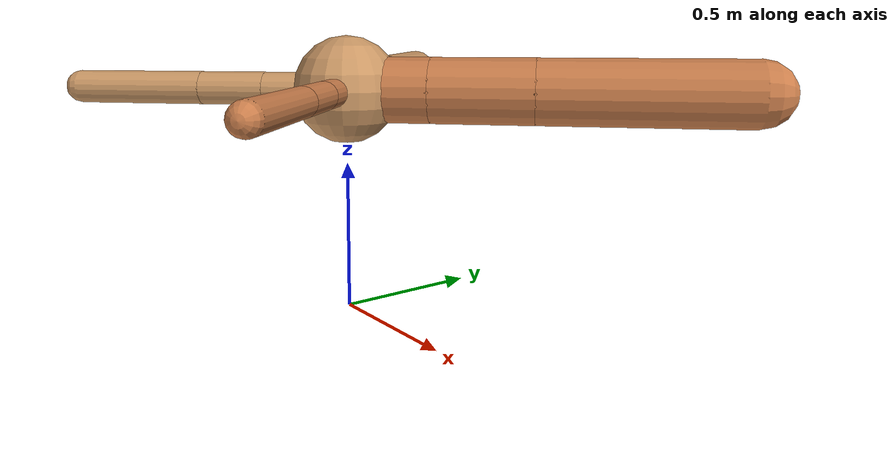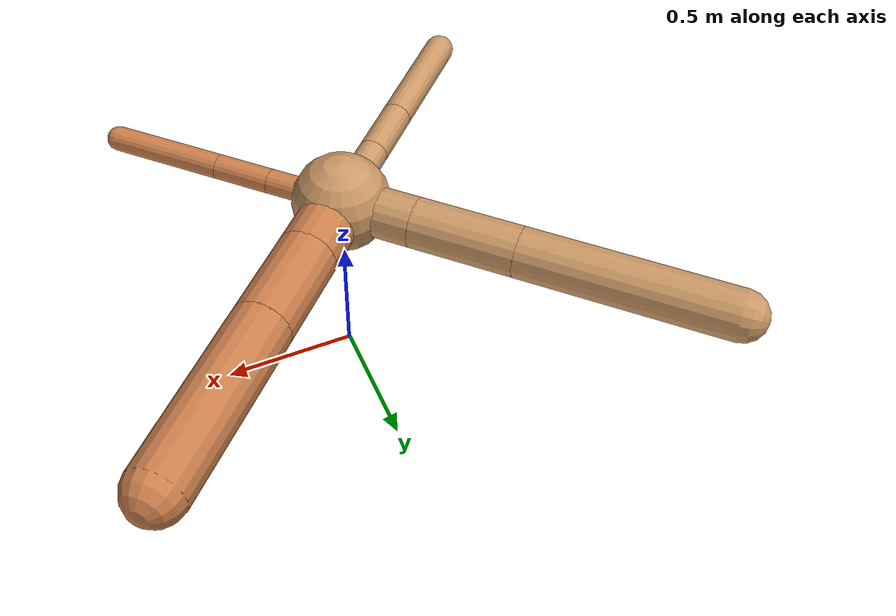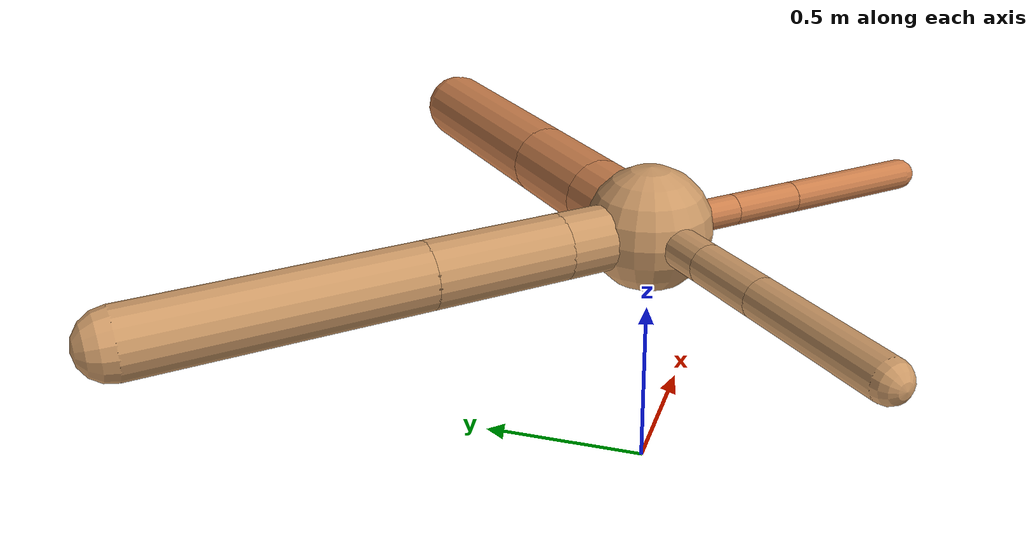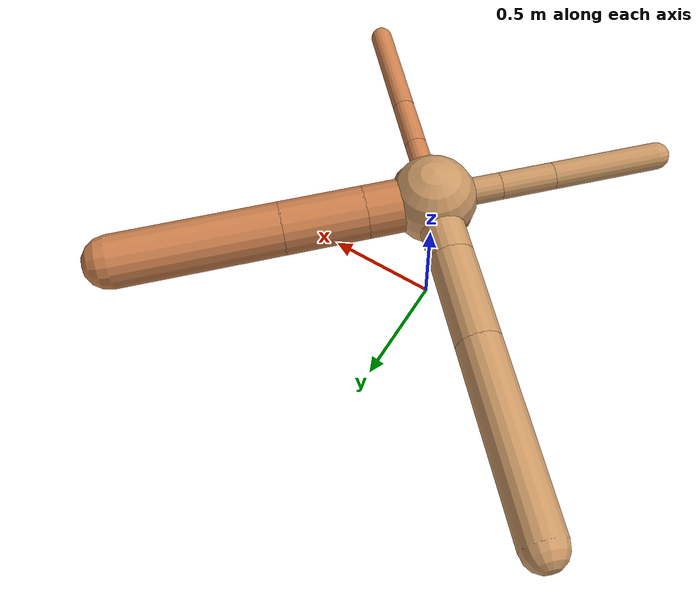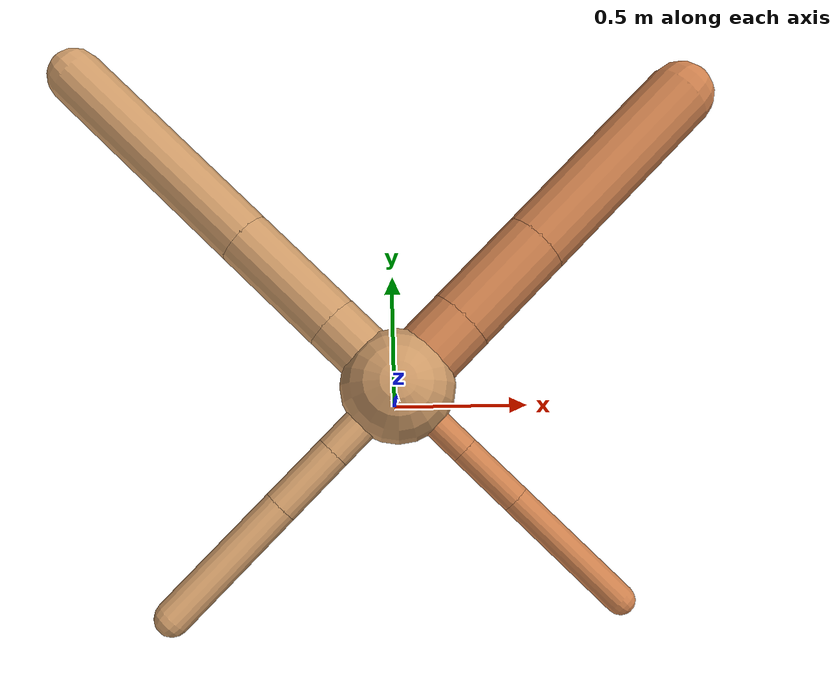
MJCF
<?xml version="1.0" ?>
<mujoco model="ant">

	<compiler angle="degree" coordinate="local" inertiafromgeom="true"/>

	<option integrator="RK4" timestep="0.01"/>

	<custom>

		<numeric data="0.0 0.0 0.55 1.0 0.0 0.0 0.0 0.0 1.0 0.0 -1.0 0.0 -1.0 0.0 1.0" name="init_qpos"/>

	</custom>

	<default>

		<joint armature="1" damping="1" limited="true"/>

		<geom conaffinity="0" condim="3" density="5.0" friction="1.5 0.1 0.1" margin="0.01" rgba="0.8 0.6 0.4 1"/>

	</default>

	<worldbody>

		<body name="torso" pos="0 0 0.75">

			<geom name="torso_geom" pos="0 0 0" size="0.17936627186171056" type="sphere"/>

			<!--joint armature="0" damping="0" limited="false" margin="0.01" name="root" pos="0 0 0" type="free"/-->

			<body name="front_left_leg" pos="0 0 0">

				<geom fromto="0 0 0 0.2 0.2 0" name="aux_1_geom" size="0.10976393002563818" type="capsule" rgba=".8 .5 .3 1"/>

				<body name="aux_1" pos="0.2 0.2 0">

					<joint axis="0 0 1" name="hip_1" pos="0.0 0.0 0.0" range="-40 40" type="hinge"/>

					<geom fromto="0 0 0 0.24053408357193248 0.24053408357193248 0" name="left_leg_geom" size="0.10976393002563818" type="capsule" rgba=".8 .5 .3 1"/>

					<body pos="0.24053408357193248 0.24053408357193248 0" name="front_left_foot">

						<joint axis="-1 1 0" name="ankle_1" pos="0.0 0.0 0.0" range="30 100" type="hinge"/>

						<geom fromto="0 0 0 0.48106816714386497 0.48106816714386497 0" name="left_ankle_geom" size="0.10976393002563818" type="capsule" rgba=".8 .5 .3 1"/>

					</body>

				</body>

			</body>

			<body name="front_right_leg" pos="0 0 0">

				<geom fromto="0 0 0 -0.2 0.2 0" name="aux_2_geom" size="0.09189312797627032" type="capsule"/>

				<body name="aux_2" pos="-0.2 0.2 0">

					<joint axis="0 0 1" name="hip_2" pos="0.0 0.0 0.0" range="-40 40" type="hinge"/>

					<geom fromto="0 0 0 -0.2723200280399839 0.2723200280399839 0" name="right_leg_geom" size="0.09189312797627032" type="capsule"/>

					<body pos="-0.2723200280399839 0.2723200280399839 0" name="front_right_foot">

						<joint axis="1 1 0" name="ankle_2" pos="0.0 0.0 0.0" range="-100 -30" type="hinge"/>

						<geom fromto="0 0 0 -0.5446400560799678 0.5446400560799678 0" name="right_ankle_geom" size="0.09189312797627032" type="capsule"/>

					</body>

				</body>

			</body>

			<body name="left_back_leg" pos="0 0 0">

				<geom fromto="0 0 0 -0.2 -0.2 0" name="aux_3_geom" size="0.05644753465351524" type="capsule"/>

				<body name="aux_3" pos="-0.2 -0.2 0">

					<joint axis="0 0 1" name="hip_3" pos="0.0 0.0 0.0" range="-40 40" type="hinge"/>

					<geom fromto="0 0 0 -0.15945318827963428 -0.15945318827963428 0" name="back_leg_geom" size="0.05644753465351524" type="capsule"/>

					<body pos="-0.15945318827963428 -0.15945318827963428 0" name="left_back_foot">

						<joint axis="-1 1 0" name="ankle_3" pos="0.0 0.0 0.0" range="-100 -30" type="hinge"/>

						<geom fromto="0 0 0 -0.31890637655926857 -0.31890637655926857 0" name="third_ankle_geom" size="0.05644753465351524" type="capsule"/>

					</body>

				</body>

			</body>

			<body name="right_back_leg" pos="0 0 0">

				<geom fromto="0 0 0 0.2 -0.2 0" name="aux_4_geom" size="0.045657211031462204" type="capsule" rgba=".8 .5 .3 1"/>

				<body name="aux_4" pos="0.2 -0.2 0">

					<joint axis="0 0 1" name="hip_4" pos="0.0 0.0 0.0" range="-40 40" type="hinge"/>

					<geom fromto="0 0 0 0.14895315292511 -0.14895315292511 0" name="rightback_leg_geom" size="0.045657211031462204" type="capsule" rgba=".8 .5 .3 1"/>

					<body pos="0.14895315292511 -0.14895315292511 0" name="right_back_foot">

						<joint axis="1 1 0" name="ankle_4" pos="0.0 0.0 0.0" range="30 100" type="hinge"/>

						<geom fromto="0 0 0 0.29790630585022 -0.29790630585022 0" name="fourth_ankle_geom" size="0.045657211031462204" type="capsule" rgba=".8 .5 .3 1"/>

					</body>

				</body>

			</body>

		</body>

	</worldbody>

	<actuator>

		<motor ctrllimited="true" ctrlrange="-1.0 1.0" joint="hip_4" gear="150"/>

		<motor ctrllimited="true" ctrlrange="-1.0 1.0" joint="ankle_4" gear="150"/>

		<motor ctrllimited="true" ctrlrange="-1.0 1.0" joint="hip_1" gear="150"/>

		<motor ctrllimited="true" ctrlrange="-1.0 1.0" joint="ankle_1" gear="150"/>

		<motor ctrllimited="true" ctrlrange="-1.0 1.0" joint="hip_2" gear="150"/>

		<motor ctrllimited="true" ctrlrange="-1.0 1.0" joint="ankle_2" gear="150"/>

		<motor ctrllimited="true" ctrlrange="-1.0 1.0" joint="hip_3" gear="150"/>

		<motor ctrllimited="true" ctrlrange="-1.0 1.0" joint="ankle_3" gear="150"/>

	</actuator>

</mujoco>
